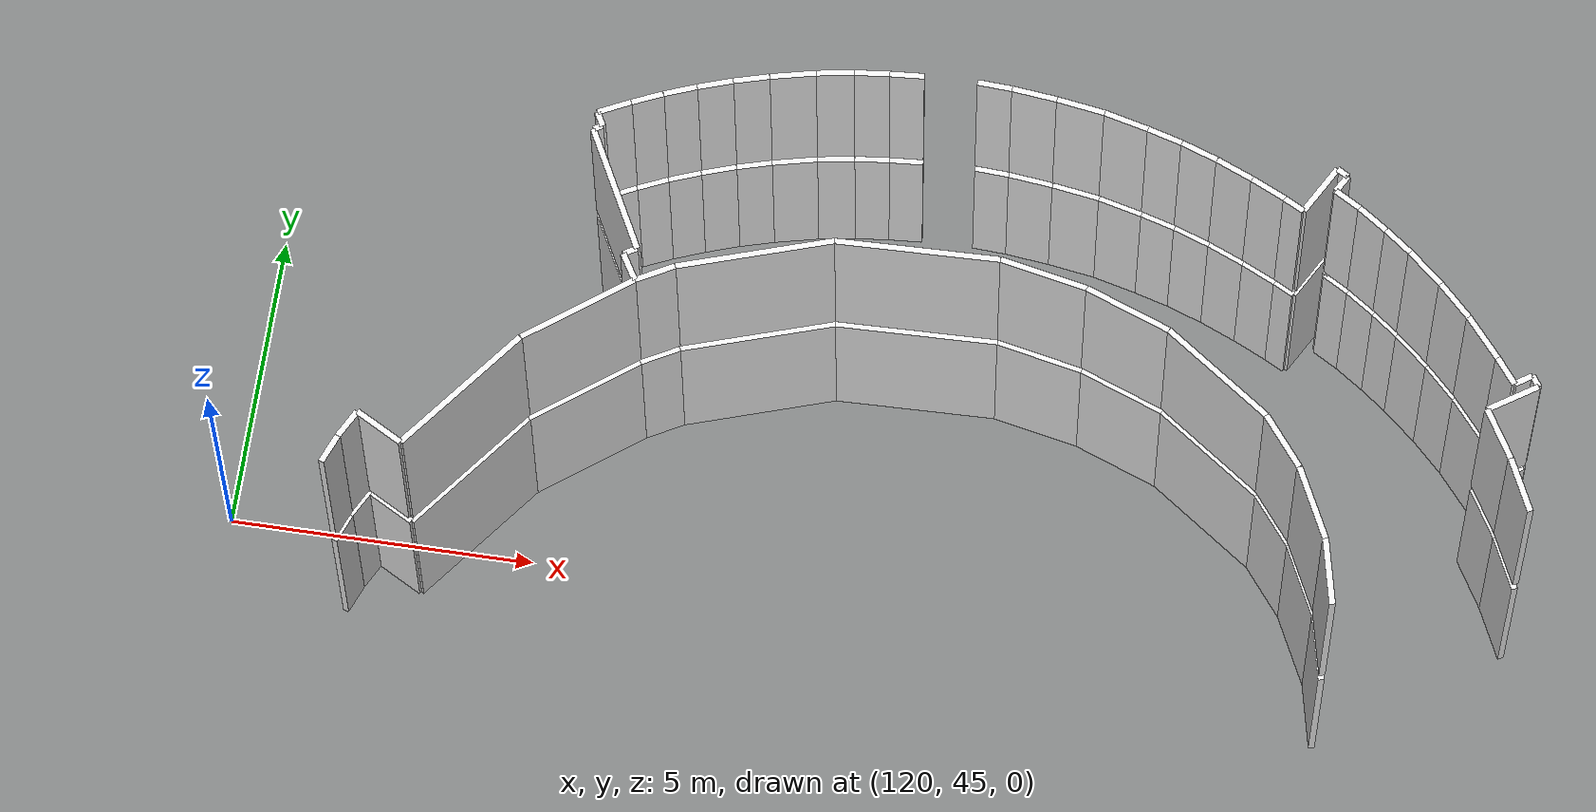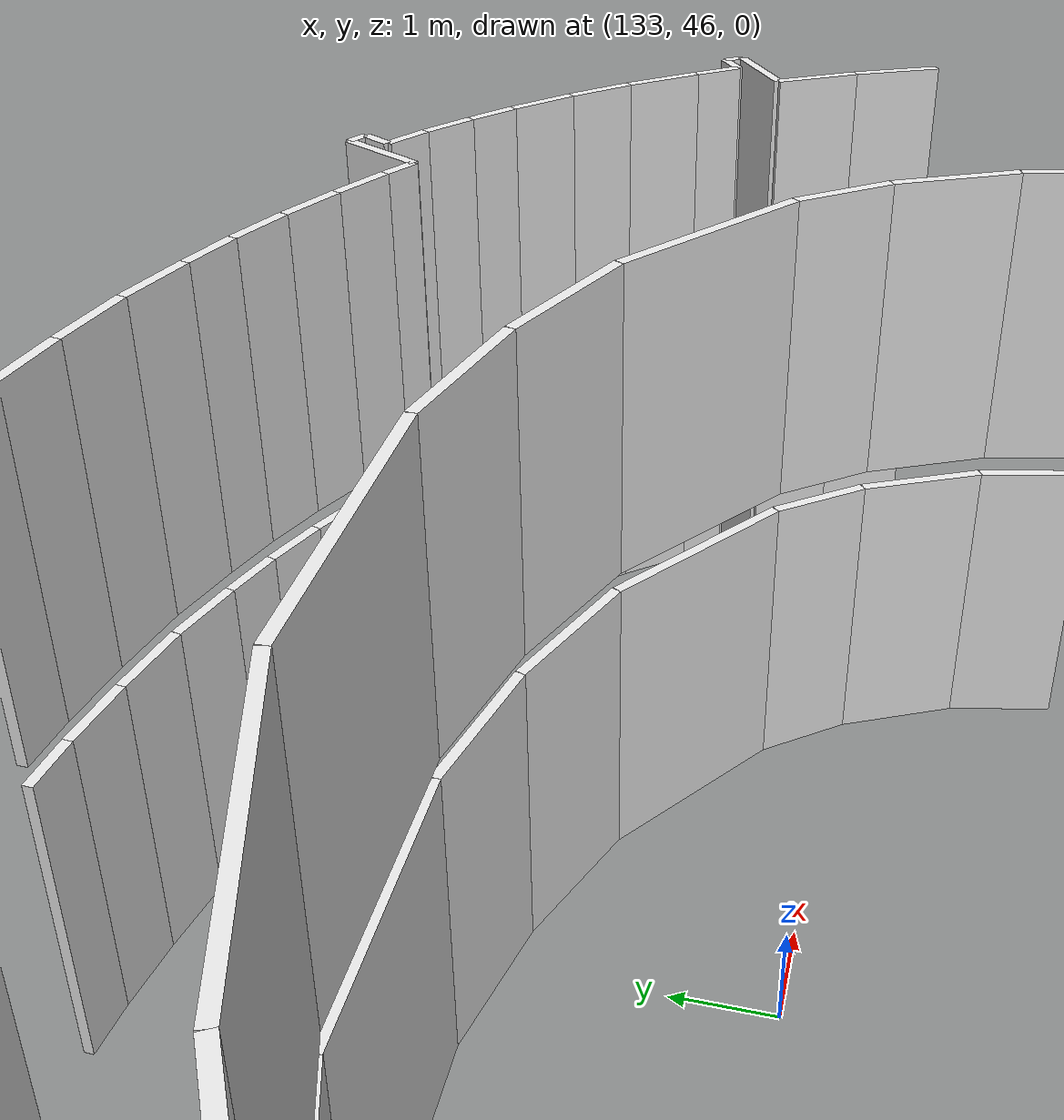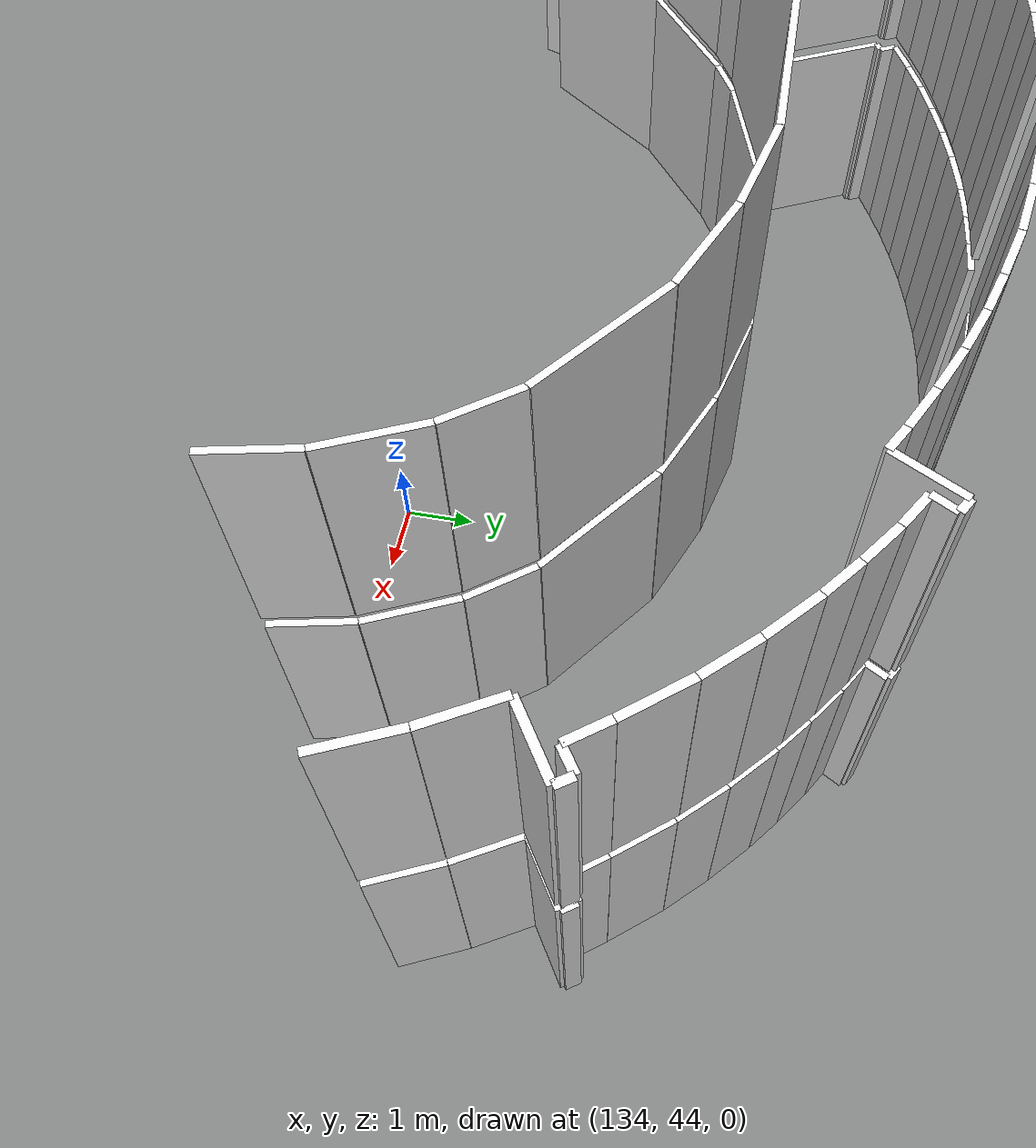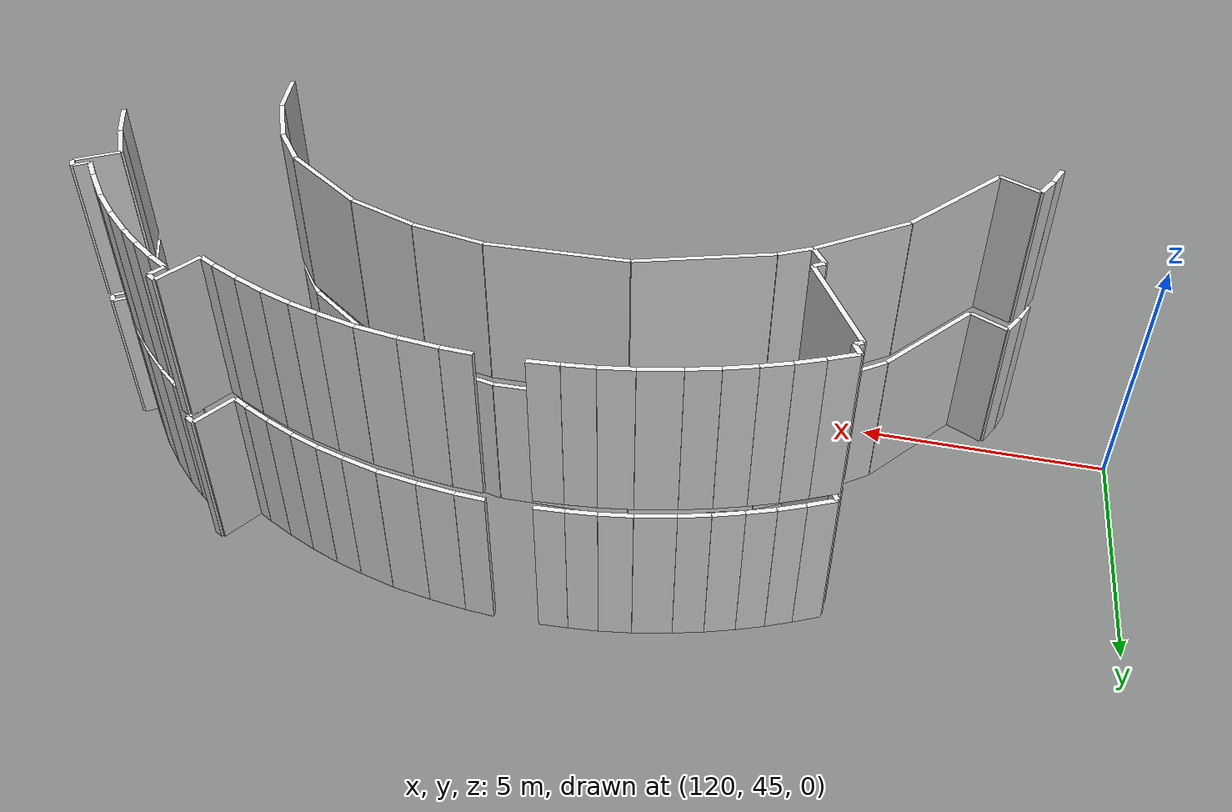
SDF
<sdf version="1.6">
 <world name="default">
  <model name="wall_137.8_44.2_0.0_link">
   <static>true</static>
   <pose>137.8300000000163 44.235000000102445 1.5 0 0 1.791443509480411</pose>
   <link name="link">
    <visual name="visual">
     <geometry><box><size>1.0965856098074533 0.1 3</size></box></geometry>
     <material>
      <script><uri>file://media/materials/scripts/gazebo.material</uri><name>Gazebo/White</name></script>
     </material>
    </visual>
   </link>
  </model>
  <model name="wall_137.4_45.3_0.0_link">
   <static>true</static>
   <pose>137.43499999999767 45.33499999996275 1.5 0 0 2.023768184880482</pose>
   <link name="link">
    <visual name="visual">
     <geometry><box><size>1.2567418190697117 0.1 3</size></box></geometry>
     <material>
      <script><uri>file://media/materials/scripts/gazebo.material</uri><name>Gazebo/White</name></script>
     </material>
    </visual>
   </link>
  </model>
  <model name="wall_136.8_46.3_0.0_link">
   <static>true</static>
   <pose>136.84999999997672 46.294999999925494 1.5 0 0 2.23620628008944</pose>
   <link name="link">
    <visual name="visual">
     <geometry><box><size>1.00424100695654 0.1 3</size></box></geometry>
     <material>
      <script><uri>file://media/materials/scripts/gazebo.material</uri><name>Gazebo/White</name></script>
     </material>
    </visual>
   </link>
  </model>
  <model name="wall_135.7_47.3_0.0_link">
   <static>true</static>
   <pose>135.69499999997788 47.294999999925494 1.5 0 0 2.52022459985605</pose>
   <link name="link">
    <visual name="visual">
     <geometry><box><size>2.0785090810284466 0.1 3</size></box></geometry>
     <material>
      <script><uri>file://media/materials/scripts/gazebo.material</uri><name>Gazebo/White</name></script>
     </material>
    </visual>
   </link>
  </model>
  <model name="wall_134.2_48.2_0.0_link">
   <static>true</static>
   <pose>134.16499999997905 48.15999999991618 1.5 0 0 2.7788283943136243</pose>
   <link name="link">
    <visual name="visual">
     <geometry><box><size>1.4653668482692697 0.1 3</size></box></geometry>
     <material>
      <script><uri>file://media/materials/scripts/gazebo.material</uri><name>Gazebo/White</name></script>
     </material>
    </visual>
   </link>
  </model>
  <model name="wall_132.8_48.6_0.0_link">
   <static>true</static>
   <pose>132.77499999999418 48.56499999994412 1.5 0 0 2.9387475563767675</pose>
   <link name="link">
    <visual name="visual">
     <geometry><box><size>1.4395138067935933 0.1 3</size></box></geometry>
     <material>
      <script><uri>file://media/materials/scripts/gazebo.material</uri><name>Gazebo/White</name></script>
     </material>
    </visual>
   </link>
  </model>
  <model name="wall_130.8_48.7_0.0_link">
   <static>true</static>
   <pose>130.75500000000466 48.675000000046566 1.5 0 0 -3.1149829664066115</pose>
   <link name="link">
    <visual name="visual">
     <geometry><box><size>2.6309313940125887 0.1 3</size></box></geometry>
     <material>
      <script><uri>file://media/materials/scripts/gazebo.material</uri><name>Gazebo/White</name></script>
     </material>
    </visual>
   </link>
  </model>
  <model name="wall_128.2_48.2_0.0_link">
   <static>true</static>
   <pose>128.23500000001513 48.23999999999069 1.5 0 0 -2.8210874284542298</pose>
   <link name="link">
    <visual name="visual">
     <geometry><box><size>2.5393109302178 0.1 3</size></box></geometry>
     <material>
      <script><uri>file://media/materials/scripts/gazebo.material</uri><name>Gazebo/White</name></script>
     </material>
    </visual>
   </link>
  </model>
  <model name="wall_126.7_47.7_0.0_link">
   <static>true</static>
   <pose>126.73500000001513 47.674999999813735 1.5 0 0 -2.6316205938106854</pose>
   <link name="link">
    <visual name="visual">
     <geometry><box><size>0.6760177513049456 0.1 3</size></box></geometry>
     <material>
      <script><uri>file://media/materials/scripts/gazebo.material</uri><name>Gazebo/White</name></script>
     </material>
    </visual>
   </link>
  </model>
  <model name="wall_125.6_46.9_0.0_link">
   <static>true</static>
   <pose>125.63500000000931 46.894999999785796 1.5 0 0 -2.489207277071973</pose>
   <link name="link">
    <visual name="visual">
     <geometry><box><size>2.0260799589130722 0.1 3</size></box></geometry>
     <material>
      <script><uri>file://media/materials/scripts/gazebo.material</uri><name>Gazebo/White</name></script>
     </material>
    </visual>
   </link>
  </model>
  <model name="wall_124.1_45.3_0.0_link">
   <static>true</static>
   <pose>124.05500000002212 45.26000000000931 1.5 0 0 -2.2205424754970724</pose>
   <link name="link">
    <visual name="visual">
     <geometry><box><size>2.562049960132707 0.1 3</size></box></geometry>
     <material>
      <script><uri>file://media/materials/scripts/gazebo.material</uri><name>Gazebo/White</name></script>
     </material>
    </visual>
   </link>
  </model>
  <model name="wall_140.6_46.1_0.0_link">
   <static>true</static>
   <pose>140.5899999999965 46.109999999869615 1.5 0 0 2.015215536730963</pose>
   <link name="link">
    <visual name="visual">
     <geometry><box><size>0.9303762678194886 0.1 3</size></box></geometry>
     <material>
      <script><uri>file://media/materials/scripts/gazebo.material</uri><name>Gazebo/White</name></script>
     </material>
    </visual>
   </link>
  </model>
  <model name="wall_140.2_46.9_0.0_link">
   <static>true</static>
   <pose>140.1600000000035 46.91499999980442 1.5 0 0 2.1093037835158754</pose>
   <link name="link">
    <visual name="visual">
     <geometry><box><size>0.8969392398863834 0.1 3</size></box></geometry>
     <material>
      <script><uri>file://media/materials/scripts/gazebo.material</uri><name>Gazebo/White</name></script>
     </material>
    </visual>
   </link>
  </model>
  <model name="wall_140.3_47.5_0.0_link">
   <static>true</static>
   <pose>140.30499999999302 47.549999999813735 1.5 0 0 0.5880026035475675</pose>
   <link name="link">
    <visual name="visual">
     <geometry><box><size>0.9013878188659973 0.1 3</size></box></geometry>
     <material>
      <script><uri>file://media/materials/scripts/gazebo.material</uri><name>Gazebo/White</name></script>
     </material>
    </visual>
   </link>
  </model>
  <model name="wall_140.6_47.9_0.0_link">
   <static>true</static>
   <pose>140.61999999999534 47.88500000000931 1.5 0 0 2.185459277614746</pose>
   <link name="link">
    <visual name="visual">
     <geometry><box><size>0.2080865207837242 0.1 3</size></box></geometry>
     <material>
      <script><uri>file://media/materials/scripts/gazebo.material</uri><name>Gazebo/White</name></script>
     </material>
    </visual>
   </link>
  </model>
  <model name="wall_140.4_47.9_0.0_link">
   <static>true</static>
   <pose>140.42999999999302 47.88000000012107 1.5 0 0 -2.536047989565728</pose>
   <link name="link">
    <visual name="visual">
     <geometry><box><size>0.31622776611991643 0.1 3</size></box></geometry>
     <material>
      <script><uri>file://media/materials/scripts/gazebo.material</uri><name>Gazebo/White</name></script>
     </material>
    </visual>
   </link>
  </model>
  <model name="wall_140.1_48.0_0.0_link">
   <static>true</static>
   <pose>140.14499999998952 47.98999999999069 1.5 0 0 2.2301063952368514</pose>
   <link name="link">
    <visual name="visual">
     <geometry><box><size>0.5060632370801604 0.1 3</size></box></geometry>
     <material>
      <script><uri>file://media/materials/scripts/gazebo.material</uri><name>Gazebo/White</name></script>
     </material>
    </visual>
   </link>
  </model>
  <model name="wall_139.7_48.5_0.0_link">
   <static>true</static>
   <pose>139.72500000000582 48.50499999988824 1.5 0 0 2.2702001990573595</pose>
   <link name="link">
    <visual name="visual">
     <geometry><box><size>0.8232860984051048 0.1 3</size></box></geometry>
     <material>
      <script><uri>file://media/materials/scripts/gazebo.material</uri><name>Gazebo/White</name></script>
     </material>
    </visual>
   </link>
  </model>
  <model name="wall_139.2_49.1_0.0_link">
   <static>true</static>
   <pose>139.21000000002095 49.06999999983236 1.5 0 0 2.356194490192345</pose>
   <link name="link">
    <visual name="visual">
     <geometry><box><size>0.7071067811865476 0.1 3</size></box></geometry>
     <material>
      <script><uri>file://media/materials/scripts/gazebo.material</uri><name>Gazebo/White</name></script>
     </material>
    </visual>
   </link>
  </model>
  <model name="wall_138.7_49.6_0.0_link">
   <static>true</static>
   <pose>138.69000000000233 49.55499999993481 1.5 0 0 2.425390768629206</pose>
   <link name="link">
    <visual name="visual">
     <geometry><box><size>0.7158910533264337 0.1 3</size></box></geometry>
     <material>
      <script><uri>file://media/materials/scripts/gazebo.material</uri><name>Gazebo/White</name></script>
     </material>
    </visual>
   </link>
  </model>
  <model name="wall_138.2_49.9_0.0_link">
   <static>true</static>
   <pose>138.20999999999185 49.949999999953434 1.5 0 0 2.490515932379146</pose>
   <link name="link">
    <visual name="visual">
     <geometry><box><size>0.5280151511832034 0.1 3</size></box></geometry>
     <material>
      <script><uri>file://media/materials/scripts/gazebo.material</uri><name>Gazebo/White</name></script>
     </material>
    </visual>
   </link>
  </model>
  <model name="wall_137.8_50.3_0.0_link">
   <static>true</static>
   <pose>137.76999999998952 50.27000000001863 1.5 0 0 2.5337906570605933</pose>
   <link name="link">
    <visual name="visual">
     <geometry><box><size>0.5603570292322684 0.1 3</size></box></geometry>
     <material>
      <script><uri>file://media/materials/scripts/gazebo.material</uri><name>Gazebo/White</name></script>
     </material>
    </visual>
   </link>
  </model>
  <model name="wall_137.3_50.6_0.0_link">
   <static>true</static>
   <pose>137.33499999999185 50.550000000046566 1.5 0 0 2.612003055220354</pose>
   <link name="link">
    <visual name="visual">
     <geometry><box><size>0.4750789406643591 0.1 3</size></box></geometry>
     <material>
      <script><uri>file://media/materials/scripts/gazebo.material</uri><name>Gazebo/White</name></script>
     </material>
    </visual>
   </link>
  </model>
  <model name="wall_137.2_50.8_0.0_link">
   <static>true</static>
   <pose>137.20999999999185 50.81000000005588 1.5 0 0 1.0516502130185124</pose>
   <link name="link">
    <visual name="visual">
     <geometry><box><size>0.3224903101456472 0.1 3</size></box></geometry>
     <material>
      <script><uri>file://media/materials/scripts/gazebo.material</uri><name>Gazebo/White</name></script>
     </material>
    </visual>
   </link>
  </model>
  <model name="wall_137.2_51.0_0.0_link">
   <static>true</static>
   <pose>137.19999999998254 51.0 1.5 0 0 2.6344941507624737</pose>
   <link name="link">
    <visual name="visual">
     <geometry><box><size>0.205912602632718 0.1 3</size></box></geometry>
     <material>
      <script><uri>file://media/materials/scripts/gazebo.material</uri><name>Gazebo/White</name></script>
     </material>
    </visual>
   </link>
  </model>
  <model name="wall_136.9_50.6_0.0_link">
   <static>true</static>
   <pose>136.88999999998487 50.64999999990687 1.5 0 0 -2.073639537823308</pose>
   <link name="link">
    <visual name="visual">
     <geometry><box><size>0.9130169766789803 0.1 3</size></box></geometry>
     <material>
      <script><uri>file://media/materials/scripts/gazebo.material</uri><name>Gazebo/White</name></script>
     </material>
    </visual>
   </link>
  </model>
  <model name="wall_136.5_50.3_0.0_link">
   <static>true</static>
   <pose>136.5099999999802 50.33499999996275 1.5 0 0 2.6532587027240147</pose>
   <link name="link">
    <visual name="visual">
     <geometry><box><size>0.3623534186110825 0.1 3</size></box></geometry>
     <material>
      <script><uri>file://media/materials/scripts/gazebo.material</uri><name>Gazebo/White</name></script>
     </material>
    </visual>
   </link>
  </model>
  <model name="wall_136.1_50.6_0.0_link">
   <static>true</static>
   <pose>136.07499999998254 50.550000000046566 1.5 0 0 2.7000002909144776</pose>
   <link name="link">
    <visual name="visual">
     <geometry><box><size>0.6083584470631678 0.1 3</size></box></geometry>
     <material>
      <script><uri>file://media/materials/scripts/gazebo.material</uri><name>Gazebo/White</name></script>
     </material>
    </visual>
   </link>
  </model>
  <model name="wall_135.5_50.8_0.0_link">
   <static>true</static>
   <pose>135.50500000000466 50.80500000016764 1.5 0 0 2.740799204994712</pose>
   <link name="link">
    <visual name="visual">
     <geometry><box><size>0.6407807737140186 0.1 3</size></box></geometry>
     <material>
      <script><uri>file://media/materials/scripts/gazebo.material</uri><name>Gazebo/White</name></script>
     </material>
    </visual>
   </link>
  </model>
  <model name="wall_134.9_51.0_0.0_link">
   <static>true</static>
   <pose>134.91500000000815 51.03500000014901 1.5 0 0 2.799642826681837</pose>
   <link name="link">
    <visual name="visual">
     <geometry><box><size>0.6262587324856838 0.1 3</size></box></geometry>
     <material>
      <script><uri>file://media/materials/scripts/gazebo.material</uri><name>Gazebo/White</name></script>
     </material>
    </visual>
   </link>
  </model>
  <model name="wall_134.3_51.2_0.0_link">
   <static>true</static>
   <pose>134.3399999999965 51.21999999997206 1.5 0 0 2.863292995106354</pose>
   <link name="link">
    <visual name="visual">
     <geometry><box><size>0.5824087910532124 0.1 3</size></box></geometry>
     <material>
      <script><uri>file://media/materials/scripts/gazebo.material</uri><name>Gazebo/White</name></script>
     </material>
    </visual>
   </link>
  </model>
  <model name="wall_133.7_51.4_0.0_link">
   <static>true</static>
   <pose>133.70000000001164 51.389999999897555 1.5 0 0 2.896613990234664</pose>
   <link name="link">
    <visual name="visual">
     <geometry><box><size>0.7421590126247316 0.1 3</size></box></geometry>
     <material>
      <script><uri>file://media/materials/scripts/gazebo.material</uri><name>Gazebo/White</name></script>
     </material>
    </visual>
   </link>
  </model>
  <model name="wall_133.0_51.5_0.0_link">
   <static>true</static>
   <pose>132.95000000001164 51.54000000003725 1.5 0 0 2.9889433250599438</pose>
   <link name="link">
    <visual name="visual">
     <geometry><box><size>0.7891767863225628 0.1 3</size></box></geometry>
     <material>
      <script><uri>file://media/materials/scripts/gazebo.material</uri><name>Gazebo/White</name></script>
     </material>
    </visual>
   </link>
  </model>
  <model name="wall_132.2_51.6_0.0_link">
   <static>true</static>
   <pose>132.19500000000698 51.640000000130385 1.5 0 0 3.0324391905773007</pose>
   <link name="link">
    <visual name="visual">
     <geometry><box><size>0.7343704786990871 0.1 3</size></box></geometry>
     <material>
      <script><uri>file://media/materials/scripts/gazebo.material</uri><name>Gazebo/White</name></script>
     </material>
    </visual>
   </link>
  </model>
  <model name="wall_131.6_51.7_0.0_link">
   <static>true</static>
   <pose>131.55000000001746 51.69500000006519 1.5 0 0 3.0880723854950856</pose>
   <link name="link">
    <visual name="visual">
     <geometry><box><size>0.5608029956991125 0.1 3</size></box></geometry>
     <material>
      <script><uri>file://media/materials/scripts/gazebo.material</uri><name>Gazebo/White</name></script>
     </material>
    </visual>
   </link>
  </model>
  <model name="wall_130.1_51.7_0.0_link">
   <static>true</static>
   <pose>130.14499999998952 51.669999999925494 1.5 0 0 -3.068993199790391</pose>
   <link name="link">
    <visual name="visual">
     <geometry><box><size>0.5514526271495808 0.1 3</size></box></geometry>
     <material>
      <script><uri>file://media/materials/scripts/gazebo.material</uri><name>Gazebo/White</name></script>
     </material>
    </visual>
   </link>
  </model>
  <model name="wall_129.6_51.6_0.0_link">
   <static>true</static>
   <pose>129.5899999999965 51.61999999987893 1.5 0 0 -3.0348569808415653</pose>
   <link name="link">
    <visual name="visual">
     <geometry><box><size>0.5632051136167868 0.1 3</size></box></geometry>
     <material>
      <script><uri>file://media/materials/scripts/gazebo.material</uri><name>Gazebo/White</name></script>
     </material>
    </visual>
   </link>
  </model>
  <model name="wall_129.0_51.5_0.0_link">
   <static>true</static>
   <pose>129.0100000000093 51.54000000003725 1.5 0 0 -2.9764439767729747</pose>
   <link name="link">
    <visual name="visual">
     <geometry><box><size>0.6082762529456124 0.1 3</size></box></geometry>
     <material>
      <script><uri>file://media/materials/scripts/gazebo.material</uri><name>Gazebo/White</name></script>
     </material>
    </visual>
   </link>
  </model>
  <model name="wall_128.4_51.4_0.0_link">
   <static>true</static>
   <pose>128.35000000000582 51.40500000002794 1.5 0 0 -2.909727992235222</pose>
   <link name="link">
    <visual name="visual">
     <geometry><box><size>0.7397972696466099 0.1 3</size></box></geometry>
     <material>
      <script><uri>file://media/materials/scripts/gazebo.material</uri><name>Gazebo/White</name></script>
     </material>
    </visual>
   </link>
  </model>
  <model name="wall_127.7_51.2_0.0_link">
   <static>true</static>
   <pose>127.70999999999185 51.23999999999069 1.5 0 0 -2.863292995106354</pose>
   <link name="link">
    <visual name="visual">
     <geometry><box><size>0.5824087910532124 0.1 3</size></box></geometry>
     <material>
      <script><uri>file://media/materials/scripts/gazebo.material</uri><name>Gazebo/White</name></script>
     </material>
    </visual>
   </link>
  </model>
  <model name="wall_127.2_51.1_0.0_link">
   <static>true</static>
   <pose>127.15499999999884 51.06500000017695 1.5 0 0 -2.8089729621001154</pose>
   <link name="link">
    <visual name="visual">
     <geometry><box><size>0.581893461009797 0.1 3</size></box></geometry>
     <material>
      <script><uri>file://media/materials/scripts/gazebo.material</uri><name>Gazebo/White</name></script>
     </material>
    </visual>
   </link>
  </model>
  <model name="wall_126.6_50.9_0.0_link">
   <static>true</static>
   <pose>126.625 50.87000000011176 1.5 0 0 -2.7678658333139023</pose>
   <link name="link">
    <visual name="visual">
     <geometry><box><size>0.5478138370687667 0.1 3</size></box></geometry>
     <material>
      <script><uri>file://media/materials/scripts/gazebo.material</uri><name>Gazebo/White</name></script>
     </material>
    </visual>
   </link>
  </model>
  <model name="wall_126.1_50.7_0.0_link">
   <static>true</static>
   <pose>126.13000000000466 50.65999999991618 1.5 0 0 -2.711830374125653</pose>
   <link name="link">
    <visual name="visual">
     <geometry><box><size>0.5280151513661996 0.1 3</size></box></geometry>
     <material>
      <script><uri>file://media/materials/scripts/gazebo.material</uri><name>Gazebo/White</name></script>
     </material>
    </visual>
   </link>
  </model>
  <model name="wall_125.6_50.4_0.0_link">
   <static>true</static>
   <pose>125.64000000001397 50.424999999813735 1.5 0 0 -2.677945044588987</pose>
   <link name="link">
    <visual name="visual">
     <geometry><box><size>0.5590169943749475 0.1 3</size></box></geometry>
     <material>
      <script><uri>file://media/materials/scripts/gazebo.material</uri><name>Gazebo/White</name></script>
     </material>
    </visual>
   </link>
  </model>
  <model name="wall_125.5_50.2_0.0_link">
   <static>true</static>
   <pose>125.45000000001164 50.18499999982305 1.5 0 0 -1.0899090465822627</pose>
   <link name="link">
    <visual name="visual">
     <geometry><box><size>0.25942243540278903 0.1 3</size></box></geometry>
     <material>
      <script><uri>file://media/materials/scripts/gazebo.material</uri><name>Gazebo/White</name></script>
     </material>
    </visual>
   </link>
  </model>
  <model name="wall_125.4_50.0_0.0_link">
   <static>true</static>
   <pose>125.44000000000233 50.03499999991618 1.5 0 0 -2.6779450455868328</pose>
   <link name="link">
    <visual name="visual">
     <geometry><box><size>0.15652475836251026 0.1 3</size></box></geometry>
     <material>
      <script><uri>file://media/materials/scripts/gazebo.material</uri><name>Gazebo/White</name></script>
     </material>
    </visual>
   </link>
  </model>
  <model name="wall_125.9_49.0_0.0_link">
   <static>true</static>
   <pose>125.88000000000466 49.02499999990687 1.5 0 0 -1.0888580748690009</pose>
   <link name="link">
    <visual name="visual">
     <geometry><box><size>2.2006589923848785 0.1 3</size></box></geometry>
     <material>
      <script><uri>file://media/materials/scripts/gazebo.material</uri><name>Gazebo/White</name></script>
     </material>
    </visual>
   </link>
  </model>
  <model name="wall_126.3_48.0_0.0_link">
   <static>true</static>
   <pose>126.29000000000815 47.98999999999069 1.5 0 0 -2.6011731546460015</pose>
   <link name="link">
    <visual name="visual">
     <geometry><box><size>0.2332380756217132 0.1 3</size></box></geometry>
     <material>
      <script><uri>file://media/materials/scripts/gazebo.material</uri><name>Gazebo/White</name></script>
     </material>
    </visual>
   </link>
  </model>
  <model name="wall_126.3_47.7_0.0_link">
   <static>true</static>
   <pose>126.31500000000233 47.71999999997206 1.5 0 0 -1.0338855844641808</pose>
   <link name="link">
    <visual name="visual">
     <geometry><box><size>0.48877397673011463 0.1 3</size></box></geometry>
     <material>
      <script><uri>file://media/materials/scripts/gazebo.material</uri><name>Gazebo/White</name></script>
     </material>
    </visual>
   </link>
  </model>
  <model name="wall_122.9_44.4_0.0_link">
   <static>true</static>
   <pose>122.90500000002794 44.44500000006519 1.5 0 0 2.641312225689999</pose>
   <link name="link">
    <visual name="visual">
     <geometry><box><size>0.8547514257024362 0.1 3</size></box></geometry>
     <material>
      <script><uri>file://media/materials/scripts/gazebo.material</uri><name>Gazebo/White</name></script>
     </material>
    </visual>
   </link>
  </model>
  <model name="wall_122.4_44.4_0.0_link">
   <static>true</static>
   <pose>122.41500000000815 44.425000000046566 1.5 0 0 -2.0432932626333105</pose>
   <link name="link">
    <visual name="visual">
     <geometry><box><size>0.5053711505089603 0.1 3</size></box></geometry>
     <material>
      <script><uri>file://media/materials/scripts/gazebo.material</uri><name>Gazebo/White</name></script>
     </material>
    </visual>
   </link>
  </model>
  <model name="wall_122.2_44.0_0.0_link">
   <static>true</static>
   <pose>122.20999999999185 43.96500000008382 1.5 0 0 -1.936543627898681</pose>
   <link name="link">
    <visual name="visual">
     <geometry><box><size>0.5032891814753054 0.1 3</size></box></geometry>
     <material>
      <script><uri>file://media/materials/scripts/gazebo.material</uri><name>Gazebo/White</name></script>
     </material>
    </visual>
   </link>
  </model>
  <model name="wall_137.8_44.2_3.2_link">
   <static>true</static>
   <pose>137.8300000000163 44.235000000102445 4.7 0 0 1.791443509480411</pose>
   <link name="link">
    <visual name="visual">
     <geometry><box><size>1.0965856098074533 0.1 3</size></box></geometry>
     <material>
      <script><uri>file://media/materials/scripts/gazebo.material</uri><name>Gazebo/White</name></script>
     </material>
    </visual>
   </link>
  </model>
  <model name="wall_137.4_45.3_3.2_link">
   <static>true</static>
   <pose>137.43499999999767 45.33499999996275 4.7 0 0 2.023768184880482</pose>
   <link name="link">
    <visual name="visual">
     <geometry><box><size>1.2567418190697117 0.1 3</size></box></geometry>
     <material>
      <script><uri>file://media/materials/scripts/gazebo.material</uri><name>Gazebo/White</name></script>
     </material>
    </visual>
   </link>
  </model>
  <model name="wall_136.8_46.3_3.2_link">
   <static>true</static>
   <pose>136.84999999997672 46.294999999925494 4.7 0 0 2.23620628008944</pose>
   <link name="link">
    <visual name="visual">
     <geometry><box><size>1.00424100695654 0.1 3</size></box></geometry>
     <material>
      <script><uri>file://media/materials/scripts/gazebo.material</uri><name>Gazebo/White</name></script>
     </material>
    </visual>
   </link>
  </model>
  <model name="wall_135.7_47.3_3.2_link">
   <static>true</static>
   <pose>135.69499999997788 47.294999999925494 4.7 0 0 2.52022459985605</pose>
   <link name="link">
    <visual name="visual">
     <geometry><box><size>2.0785090810284466 0.1 3</size></box></geometry>
     <material>
      <script><uri>file://media/materials/scripts/gazebo.material</uri><name>Gazebo/White</name></script>
     </material>
    </visual>
   </link>
  </model>
  <model name="wall_134.2_48.2_3.2_link">
   <static>true</static>
   <pose>134.16499999997905 48.15999999991618 4.7 0 0 2.7788283943136243</pose>
   <link name="link">
    <visual name="visual">
     <geometry><box><size>1.4653668482692697 0.1 3</size></box></geometry>
     <material>
      <script><uri>file://media/materials/scripts/gazebo.material</uri><name>Gazebo/White</name></script>
     </material>
    </visual>
   </link>
  </model>
  <model name="wall_132.8_48.6_3.2_link">
   <static>true</static>
   <pose>132.77499999999418 48.56499999994412 4.7 0 0 2.9387475563767675</pose>
   <link name="link">
    <visual name="visual">
     <geometry><box><size>1.4395138067935933 0.1 3</size></box></geometry>
     <material>
      <script><uri>file://media/materials/scripts/gazebo.material</uri><name>Gazebo/White</name></script>
     </material>
    </visual>
   </link>
  </model>
  <model name="wall_130.8_48.7_3.2_link">
   <static>true</static>
   <pose>130.75500000000466 48.675000000046566 4.7 0 0 -3.1149829664066115</pose>
   <link name="link">
    <visual name="visual">
     <geometry><box><size>2.6309313940125887 0.1 3</size></box></geometry>
     <material>
      <script><uri>file://media/materials/scripts/gazebo.material</uri><name>Gazebo/White</name></script>
     </material>
    </visual>
   </link>
  </model>
  <model name="wall_128.2_48.2_3.2_link">
   <static>true</static>
   <pose>128.23500000001513 48.23999999999069 4.7 0 0 -2.8210874284542298</pose>
   <link name="link">
    <visual name="visual">
     <geometry><box><size>2.5393109302178 0.1 3</size></box></geometry>
     <material>
      <script><uri>file://media/materials/scripts/gazebo.material</uri><name>Gazebo/White</name></script>
     </material>
    </visual>
   </link>
  </model>
  <model name="wall_126.7_47.7_3.2_link">
   <static>true</static>
   <pose>126.73500000001513 47.674999999813735 4.7 0 0 -2.6316205938106854</pose>
   <link name="link">
    <visual name="visual">
     <geometry><box><size>0.6760177513049456 0.1 3</size></box></geometry>
     <material>
      <script><uri>file://media/materials/scripts/gazebo.material</uri><name>Gazebo/White</name></script>
     </material>
    </visual>
   </link>
  </model>
  <model name="wall_125.6_46.9_3.2_link">
   <static>true</static>
   <pose>125.63500000000931 46.894999999785796 4.7 0 0 -2.489207277071973</pose>
   <link name="link">
    <visual name="visual">
     <geometry><box><size>2.0260799589130722 0.1 3</size></box></geometry>
     <material>
      <script><uri>file://media/materials/scripts/gazebo.material</uri><name>Gazebo/White</name></script>
     </material>
    </visual>
   </link>
  </model>
  <model name="wall_124.1_45.3_3.2_link">
   <static>true</static>
   <pose>124.05500000002212 45.26000000000931 4.7 0 0 -2.2205424754970724</pose>
   <link name="link">
    <visual name="visual">
     <geometry><box><size>2.562049960132707 0.1 3</size></box></geometry>
     <material>
      <script><uri>file://media/materials/scripts/gazebo.material</uri><name>Gazebo/White</name></script>
     </material>
    </visual>
   </link>
  </model>
  <model name="wall_140.6_46.1_3.2_link">
   <static>true</static>
   <pose>140.5899999999965 46.109999999869615 4.7 0 0 2.015215536730963</pose>
   <link name="link">
    <visual name="visual">
     <geometry><box><size>0.9303762678194886 0.1 3</size></box></geometry>
     <material>
      <script><uri>file://media/materials/scripts/gazebo.material</uri><name>Gazebo/White</name></script>
     </material>
    </visual>
   </link>
  </model>
  <model name="wall_140.2_46.9_3.2_link">
   <static>true</static>
   <pose>140.1600000000035 46.91499999980442 4.7 0 0 2.1093037835158754</pose>
   <link name="link">
    <visual name="visual">
     <geometry><box><size>0.8969392398863834 0.1 3</size></box></geometry>
     <material>
      <script><uri>file://media/materials/scripts/gazebo.material</uri><name>Gazebo/White</name></script>
     </material>
    </visual>
   </link>
  </model>
  <model name="wall_140.3_47.5_3.2_link">
   <static>true</static>
   <pose>140.30499999999302 47.549999999813735 4.7 0 0 0.5880026035475675</pose>
   <link name="link">
    <visual name="visual">
     <geometry><box><size>0.9013878188659973 0.1 3</size></box></geometry>
     <material>
      <script><uri>file://media/materials/scripts/gazebo.material</uri><name>Gazebo/White</name></script>
     </material>
    </visual>
   </link>
  </model>
  <model name="wall_140.6_47.9_3.2_link">
   <static>true</static>
   <pose>140.61999999999534 47.88500000000931 4.7 0 0 2.185459277614746</pose>
   <link name="link">
    <visual name="visual">
     <geometry><box><size>0.2080865207837242 0.1 3</size></box></geometry>
     <material>
      <script><uri>file://media/materials/scripts/gazebo.material</uri><name>Gazebo/White</name></script>
     </material>
    </visual>
   </link>
  </model>
  <model name="wall_140.4_47.9_3.2_link">
   <static>true</static>
   <pose>140.42999999999302 47.88000000012107 4.7 0 0 -2.536047989565728</pose>
   <link name="link">
    <visual name="visual">
     <geometry><box><size>0.31622776611991643 0.1 3</size></box></geometry>
     <material>
      <script><uri>file://media/materials/scripts/gazebo.material</uri><name>Gazebo/White</name></script>
     </material>
    </visual>
   </link>
  </model>
  <model name="wall_140.1_48.0_3.2_link">
   <static>true</static>
   <pose>140.14499999998952 47.98999999999069 4.7 0 0 2.2301063952368514</pose>
   <link name="link">
    <visual name="visual">
     <geometry><box><size>0.5060632370801604 0.1 3</size></box></geometry>
     <material>
      <script><uri>file://media/materials/scripts/gazebo.material</uri><name>Gazebo/White</name></script>
     </material>
    </visual>
   </link>
  </model>
  <model name="wall_139.7_48.5_3.2_link">
   <static>true</static>
   <pose>139.72500000000582 48.50499999988824 4.7 0 0 2.2702001990573595</pose>
   <link name="link">
    <visual name="visual">
     <geometry><box><size>0.8232860984051048 0.1 3</size></box></geometry>
     <material>
      <script><uri>file://media/materials/scripts/gazebo.material</uri><name>Gazebo/White</name></script>
     </material>
    </visual>
   </link>
  </model>
  <model name="wall_139.2_49.1_3.2_link">
   <static>true</static>
   <pose>139.21000000002095 49.06999999983236 4.7 0 0 2.356194490192345</pose>
   <link name="link">
    <visual name="visual">
     <geometry><box><size>0.7071067811865476 0.1 3</size></box></geometry>
     <material>
      <script><uri>file://media/materials/scripts/gazebo.material</uri><name>Gazebo/White</name></script>
     </material>
    </visual>
   </link>
  </model>
  <model name="wall_138.7_49.6_3.2_link">
   <static>true</static>
   <pose>138.69000000000233 49.55499999993481 4.7 0 0 2.425390768629206</pose>
   <link name="link">
    <visual name="visual">
     <geometry><box><size>0.7158910533264337 0.1 3</size></box></geometry>
     <material>
      <script><uri>file://media/materials/scripts/gazebo.material</uri><name>Gazebo/White</name></script>
     </material>
    </visual>
   </link>
  </model>
  <model name="wall_138.2_49.9_3.2_link">
   <static>true</static>
   <pose>138.20999999999185 49.949999999953434 4.7 0 0 2.490515932379146</pose>
   <link name="link">
    <visual name="visual">
     <geometry><box><size>0.5280151511832034 0.1 3</size></box></geometry>
     <material>
      <script><uri>file://media/materials/scripts/gazebo.material</uri><name>Gazebo/White</name></script>
     </material>
    </visual>
   </link>
  </model>
  <model name="wall_137.8_50.3_3.2_link">
   <static>true</static>
   <pose>137.76999999998952 50.27000000001863 4.7 0 0 2.5337906570605933</pose>
   <link name="link">
    <visual name="visual">
     <geometry><box><size>0.5603570292322684 0.1 3</size></box></geometry>
     <material>
      <script><uri>file://media/materials/scripts/gazebo.material</uri><name>Gazebo/White</name></script>
     </material>
    </visual>
   </link>
  </model>
  <model name="wall_137.3_50.6_3.2_link">
   <static>true</static>
   <pose>137.33499999999185 50.550000000046566 4.7 0 0 2.612003055220354</pose>
   <link name="link">
    <visual name="visual">
     <geometry><box><size>0.4750789406643591 0.1 3</size></box></geometry>
     <material>
      <script><uri>file://media/materials/scripts/gazebo.material</uri><name>Gazebo/White</name></script>
     </material>
    </visual>
   </link>
  </model>
  <model name="wall_137.2_50.8_3.2_link">
   <static>true</static>
   <pose>137.20999999999185 50.81000000005588 4.7 0 0 1.0516502130185124</pose>
   <link name="link">
    <visual name="visual">
     <geometry><box><size>0.3224903101456472 0.1 3</size></box></geometry>
     <material>
      <script><uri>file://media/materials/scripts/gazebo.material</uri><name>Gazebo/White</name></script>
     </material>
    </visual>
   </link>
  </model>
  <model name="wall_137.2_51.0_3.2_link">
   <static>true</static>
   <pose>137.19999999998254 51.0 4.7 0 0 2.6344941507624737</pose>
   <link name="link">
    <visual name="visual">
     <geometry><box><size>0.205912602632718 0.1 3</size></box></geometry>
     <material>
      <script><uri>file://media/materials/scripts/gazebo.material</uri><name>Gazebo/White</name></script>
     </material>
    </visual>
   </link>
  </model>
  <model name="wall_136.9_50.6_3.2_link">
   <static>true</static>
   <pose>136.88999999998487 50.64999999990687 4.7 0 0 -2.073639537823308</pose>
   <link name="link">
    <visual name="visual">
     <geometry><box><size>0.9130169766789803 0.1 3</size></box></geometry>
     <material>
      <script><uri>file://media/materials/scripts/gazebo.material</uri><name>Gazebo/White</name></script>
     </material>
    </visual>
   </link>
  </model>
  <model name="wall_136.5_50.3_3.2_link">
   <static>true</static>
   <pose>136.5099999999802 50.33499999996275 4.7 0 0 2.6532587027240147</pose>
   <link name="link">
    <visual name="visual">
     <geometry><box><size>0.3623534186110825 0.1 3</size></box></geometry>
     <material>
      <script><uri>file://media/materials/scripts/gazebo.material</uri><name>Gazebo/White</name></script>
     </material>
    </visual>
   </link>
  </model>
  <model name="wall_136.1_50.6_3.2_link">
   <static>true</static>
   <pose>136.07499999998254 50.550000000046566 4.7 0 0 2.7000002909144776</pose>
   <link name="link">
    <visual name="visual">
     <geometry><box><size>0.6083584470631678 0.1 3</size></box></geometry>
     <material>
      <script><uri>file://media/materials/scripts/gazebo.material</uri><name>Gazebo/White</name></script>
     </material>
    </visual>
   </link>
  </model>
  <model name="wall_135.5_50.8_3.2_link">
   <static>true</static>
   <pose>135.50500000000466 50.80500000016764 4.7 0 0 2.740799204994712</pose>
   <link name="link">
    <visual name="visual">
     <geometry><box><size>0.6407807737140186 0.1 3</size></box></geometry>
     <material>
      <script><uri>file://media/materials/scripts/gazebo.material</uri><name>Gazebo/White</name></script>
     </material>
    </visual>
   </link>
  </model>
  <model name="wall_134.9_51.0_3.2_link">
   <static>true</static>
   <pose>134.91500000000815 51.03500000014901 4.7 0 0 2.799642826681837</pose>
   <link name="link">
    <visual name="visual">
     <geometry><box><size>0.6262587324856838 0.1 3</size></box></geometry>
     <material>
      <script><uri>file://media/materials/scripts/gazebo.material</uri><name>Gazebo/White</name></script>
     </material>
    </visual>
   </link>
  </model>
  <model name="wall_134.3_51.2_3.2_link">
   <static>true</static>
   <pose>134.3399999999965 51.21999999997206 4.7 0 0 2.863292995106354</pose>
   <link name="link">
    <visual name="visual">
     <geometry><box><size>0.5824087910532124 0.1 3</size></box></geometry>
     <material>
      <script><uri>file://media/materials/scripts/gazebo.material</uri><name>Gazebo/White</name></script>
     </material>
    </visual>
   </link>
  </model>
  <model name="wall_133.7_51.4_3.2_link">
   <static>true</static>
   <pose>133.70000000001164 51.389999999897555 4.7 0 0 2.896613990234664</pose>
   <link name="link">
    <visual name="visual">
     <geometry><box><size>0.7421590126247316 0.1 3</size></box></geometry>
     <material>
      <script><uri>file://media/materials/scripts/gazebo.material</uri><name>Gazebo/White</name></script>
     </material>
    </visual>
   </link>
  </model>
  <model name="wall_133.0_51.5_3.2_link">
   <static>true</static>
   <pose>132.95000000001164 51.54000000003725 4.7 0 0 2.9889433250599438</pose>
   <link name="link">
    <visual name="visual">
     <geometry><box><size>0.7891767863225628 0.1 3</size></box></geometry>
     <material>
      <script><uri>file://media/materials/scripts/gazebo.material</uri><name>Gazebo/White</name></script>
     </material>
    </visual>
   </link>
  </model>
  <model name="wall_132.2_51.6_3.2_link">
   <static>true</static>
   <pose>132.19500000000698 51.640000000130385 4.7 0 0 3.0324391905773007</pose>
   <link name="link">
    <visual name="visual">
     <geometry><box><size>0.7343704786990871 0.1 3</size></box></geometry>
     <material>
      <script><uri>file://media/materials/scripts/gazebo.material</uri><name>Gazebo/White</name></script>
     </material>
    </visual>
   </link>
  </model>
  <model name="wall_131.6_51.7_3.2_link">
   <static>true</static>
   <pose>131.55000000001746 51.69500000006519 4.7 0 0 3.0880723854950856</pose>
   <link name="link">
    <visual name="visual">
     <geometry><box><size>0.5608029956991125 0.1 3</size></box></geometry>
     <material>
      <script><uri>file://media/materials/scripts/gazebo.material</uri><name>Gazebo/White</name></script>
     </material>
    </visual>
   </link>
  </model>
  <model name="wall_130.1_51.7_3.2_link">
   <static>true</static>
   <pose>130.14499999998952 51.669999999925494 4.7 0 0 -3.068993199790391</pose>
   <link name="link">
    <visual name="visual">
     <geometry><box><size>0.5514526271495808 0.1 3</size></box></geometry>
     <material>
      <script><uri>file://media/materials/scripts/gazebo.material</uri><name>Gazebo/White</name></script>
     </material>
    </visual>
   </link>
  </model>
  <model name="wall_129.6_51.6_3.2_link">
   <static>true</static>
   <pose>129.5899999999965 51.61999999987893 4.7 0 0 -3.0348569808415653</pose>
   <link name="link">
    <visual name="visual">
     <geometry><box><size>0.5632051136167868 0.1 3</size></box></geometry>
     <material>
      <script><uri>file://media/materials/scripts/gazebo.material</uri><name>Gazebo/White</name></script>
     </material>
    </visual>
   </link>
  </model>
  <model name="wall_129.0_51.5_3.2_link">
   <static>true</static>
   <pose>129.0100000000093 51.54000000003725 4.7 0 0 -2.9764439767729747</pose>
   <link name="link">
    <visual name="visual">
     <geometry><box><size>0.6082762529456124 0.1 3</size></box></geometry>
     <material>
      <script><uri>file://media/materials/scripts/gazebo.material</uri><name>Gazebo/White</name></script>
     </material>
    </visual>
   </link>
  </model>
  <model name="wall_128.4_51.4_3.2_link">
   <static>true</static>
   <pose>128.35000000000582 51.40500000002794 4.7 0 0 -2.909727992235222</pose>
   <link name="link">
    <visual name="visual">
     <geometry><box><size>0.7397972696466099 0.1 3</size></box></geometry>
     <material>
      <script><uri>file://media/materials/scripts/gazebo.material</uri><name>Gazebo/White</name></script>
     </material>
    </visual>
   </link>
  </model>
  <model name="wall_127.7_51.2_3.2_link">
   <static>true</static>
   <pose>127.70999999999185 51.23999999999069 4.7 0 0 -2.863292995106354</pose>
   <link name="link">
    <visual name="visual">
     <geometry><box><size>0.5824087910532124 0.1 3</size></box></geometry>
     <material>
      <script><uri>file://media/materials/scripts/gazebo.material</uri><name>Gazebo/White</name></script>
     </material>
    </visual>
   </link>
  </model>
  <model name="wall_127.2_51.1_3.2_link">
   <static>true</static>
   <pose>127.15499999999884 51.06500000017695 4.7 0 0 -2.8089729621001154</pose>
   <link name="link">
    <visual name="visual">
     <geometry><box><size>0.581893461009797 0.1 3</size></box></geometry>
     <material>
      <script><uri>file://media/materials/scripts/gazebo.material</uri><name>Gazebo/White</name></script>
     </material>
    </visual>
   </link>
  </model>
  <model name="wall_126.6_50.9_3.2_link">
   <static>true</static>
   <pose>126.625 50.87000000011176 4.7 0 0 -2.7678658333139023</pose>
   <link name="link">
    <visual name="visual">
     <geometry><box><size>0.5478138370687667 0.1 3</size></box></geometry>
     <material>
      <script><uri>file://media/materials/scripts/gazebo.material</uri><name>Gazebo/White</name></script>
     </material>
    </visual>
   </link>
  </model>
  <model name="wall_126.1_50.7_3.2_link">
   <static>true</static>
   <pose>126.13000000000466 50.65999999991618 4.7 0 0 -2.711830374125653</pose>
   <link name="link">
    <visual name="visual">
     <geometry><box><size>0.5280151513661996 0.1 3</size></box></geometry>
     <material>
      <script><uri>file://media/materials/scripts/gazebo.material</uri><name>Gazebo/White</name></script>
     </material>
    </visual>
   </link>
  </model>
  <model name="wall_125.6_50.4_3.2_link">
   <static>true</static>
   <pose>125.64000000001397 50.424999999813735 4.7 0 0 -2.677945044588987</pose>
   <link name="link">
    <visual name="visual">
     <geometry><box><size>0.5590169943749475 0.1 3</size></box></geometry>
     <material>
      <script><uri>file://media/materials/scripts/gazebo.material</uri><name>Gazebo/White</name></script>
     </material>
    </visual>
   </link>
  </model>
  <model name="wall_125.5_50.2_3.2_link">
   <static>true</static>
   <pose>125.45000000001164 50.18499999982305 4.7 0 0 -1.0899090465822627</pose>
   <link name="link">
    <visual name="visual">
     <geometry><box><size>0.25942243540278903 0.1 3</size></box></geometry>
     <material>
      <script><uri>file://media/materials/scripts/gazebo.material</uri><name>Gazebo/White</name></script>
     </material>
    </visual>
   </link>
  </model>
  <model name="wall_125.4_50.0_3.2_link">
   <static>true</static>
   <pose>125.44000000000233 50.03499999991618 4.7 0 0 -2.6779450455868328</pose>
   <link name="link">
    <visual name="visual">
     <geometry><box><size>0.15652475836251026 0.1 3</size></box></geometry>
     <material>
      <script><uri>file://media/materials/scripts/gazebo.material</uri><name>Gazebo/White</name></script>
     </material>
    </visual>
   </link>
  </model>
  <model name="wall_125.9_49.0_3.2_link">
   <static>true</static>
   <pose>125.88000000000466 49.02499999990687 4.7 0 0 -1.0888580748690009</pose>
   <link name="link">
    <visual name="visual">
     <geometry><box><size>2.2006589923848785 0.1 3</size></box></geometry>
     <material>
      <script><uri>file://media/materials/scripts/gazebo.material</uri><name>Gazebo/White</name></script>
     </material>
    </visual>
   </link>
  </model>
  <model name="wall_126.3_48.0_3.2_link">
   <static>true</static>
   <pose>126.29000000000815 47.98999999999069 4.7 0 0 -2.6011731546460015</pose>
   <link name="link">
    <visual name="visual">
     <geometry><box><size>0.2332380756217132 0.1 3</size></box></geometry>
     <material>
      <script><uri>file://media/materials/scripts/gazebo.material</uri><name>Gazebo/White</name></script>
     </material>
    </visual>
   </link>
  </model>
  <model name="wall_126.3_47.7_3.2_link">
   <static>true</static>
   <pose>126.31500000000233 47.71999999997206 4.7 0 0 -1.0338855844641808</pose>
   <link name="link">
    <visual name="visual">
     <geometry><box><size>0.48877397673011463 0.1 3</size></box></geometry>
     <material>
      <script><uri>file://media/materials/scripts/gazebo.material</uri><name>Gazebo/White</name></script>
     </material>
    </visual>
   </link>
  </model>
  <model name="wall_122.9_44.4_3.2_link">
   <static>true</static>
   <pose>122.90500000002794 44.44500000006519 4.7 0 0 2.641312225689999</pose>
   <link name="link">
    <visual name="visual">
     <geometry><box><size>0.8547514257024362 0.1 3</size></box></geometry>
     <material>
      <script><uri>file://media/materials/scripts/gazebo.material</uri><name>Gazebo/White</name></script>
     </material>
    </visual>
   </link>
  </model>
  <model name="wall_122.4_44.4_3.2_link">
   <static>true</static>
   <pose>122.41500000000815 44.425000000046566 4.7 0 0 -2.0432932626333105</pose>
   <link name="link">
    <visual name="visual">
     <geometry><box><size>0.5053711505089603 0.1 3</size></box></geometry>
     <material>
      <script><uri>file://media/materials/scripts/gazebo.material</uri><name>Gazebo/White</name></script>
     </material>
    </visual>
   </link>
  </model>
  <model name="wall_122.2_44.0_3.2_link">
   <static>true</static>
   <pose>122.20999999999185 43.96500000008382 4.7 0 0 -1.936543627898681</pose>
   <link name="link">
    <visual name="visual">
     <geometry><box><size>0.5032891814753054 0.1 3</size></box></geometry>
     <material>
      <script><uri>file://media/materials/scripts/gazebo.material</uri><name>Gazebo/White</name></script>
     </material>
    </visual>
   </link>
  </model>
 </world>
</sdf>
